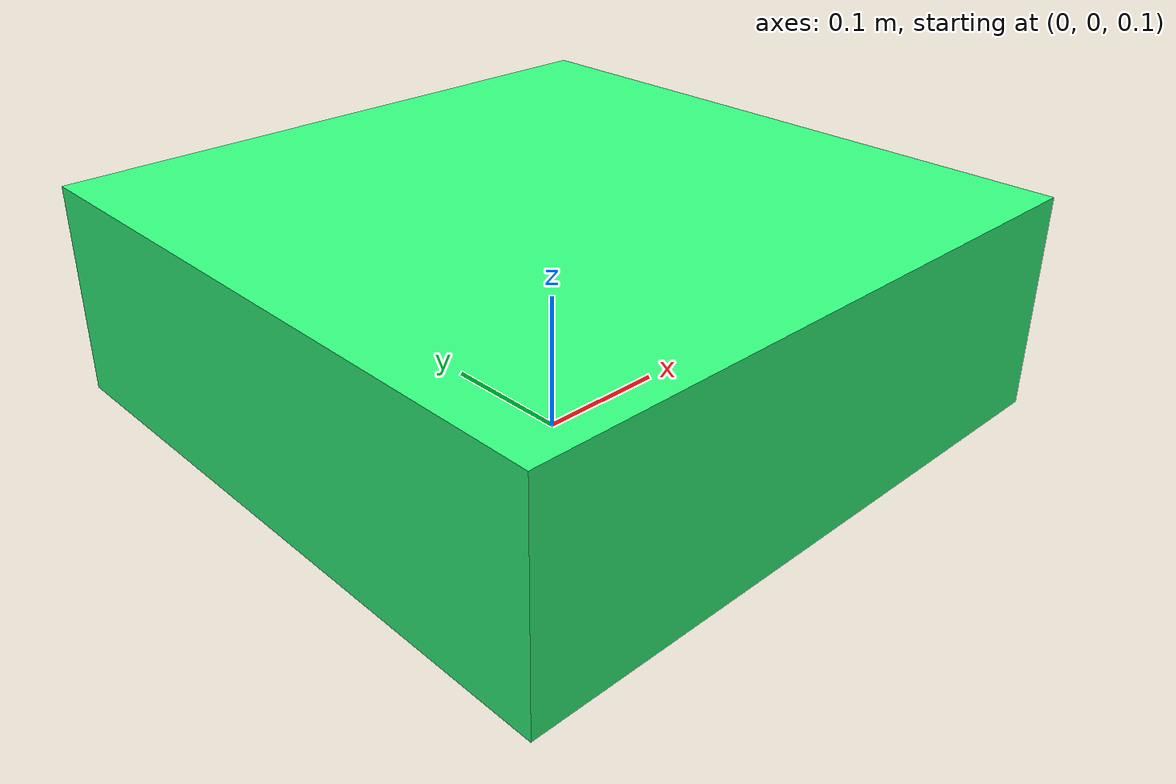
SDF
<?xml version="1.0" ?>
<sdf version="1.8">
  <model name="uav_beta_relay">
    <pose>0 0 0.2 0 0 0</pose>
    <static>false</static>
    <self_collide>false</self_collide>

    <!-- Main Chassis Frame -->
    <link name="base_link">
      <pose>0 0 0 0 0 0</pose>
      <inertial>
        <mass>1.45</mass>
        <inertia>
          <ixx>0.02</ixx>
          <ixy>0</ixy>
          <ixz>0</ixz>
          <iyy>0.02</iyy>
          <iyz>0</iyz>
          <izz>0.04</izz>
        </inertia>
      </inertial>
      <collision name="chassis_collision">
        <geometry>
          <box><size>0.45 0.45 0.15</size></box>
        </geometry>
      </collision>
      <visual name="chassis_visual">
        <geometry>
          <box><size>0.45 0.45 0.15</size></box>
        </geometry>
        <material>
          <ambient>0.1 1.0 0.4 1</ambient>
          <diffuse>0.2 1.0 0.5 1</diffuse>
        </material>
      </visual>

      <!-- 1. IMU Sensor -->
      <sensor name="imu_sensor" type="imu">
        <always_on>true</always_on>
        <update_rate>250.0</update_rate>
        <topic>/uav_beta/imu</topic>
      </sensor>

      <!-- 2. Barometer -->
      <sensor name="air_pressure_sensor" type="air_pressure">
        <always_on>true</always_on>
        <update_rate>50.0</update_rate>
        <topic>/uav_beta/air_pressure</topic>
        <air_pressure><reference_altitude>0.0</reference_altitude><pressure><noise type="gaussian"><mean>0.0</mean><stddev>1.2</stddev></noise></pressure></air_pressure>
      </sensor>

      <!-- 3. Magnetometer -->
      <sensor name="magnetometer_sensor" type="magnetometer">
        <always_on>true</always_on>
        <update_rate>50.0</update_rate>
        <topic>/uav_beta/magnetometer</topic>
      </sensor>

      <!-- 4. NavSat GNSS -->
      <sensor name="navsat_sensor" type="navsat">
        <always_on>true</always_on>
        <update_rate>10.0</update_rate>
        <topic>/uav_beta/navsat</topic>
      </sensor>

      <!-- 5. 360° 3D GPU LiDAR -->
      <sensor name="lidar_sensor" type="gpu_lidar">
        <pose>0 0 0.08 0 0 0</pose>
        <always_on>true</always_on>
        <update_rate>10.0</update_rate>
        <topic>/uav_beta/lidar/points</topic>
        <ray>
          <scan>
            <horizontal><samples>720</samples><resolution>1</resolution><min_angle>-3.14159265</min_angle><max_angle>3.14159265</max_angle></horizontal>
            <vertical><samples>32</samples><resolution>1</resolution><min_angle>-0.436332</min_angle><max_angle>0.261799</max_angle></vertical>
          </scan>
          <range><min>0.10</min><max>50.0</max><resolution>0.01</resolution></range>
          <noise><type>gaussian</type><mean>0.0</mean><stddev>0.01</stddev></noise>
        </ray>
      </sensor>

      <!-- 6. Downward Rangefinder -->
      <sensor name="rangefinder_sensor" type="gpu_lidar">
        <pose>0 0 -0.04 0 1.5707963 0</pose>
        <always_on>true</always_on>
        <update_rate>50.0</update_rate>
        <topic>/uav_beta/rangefinder/distance</topic>
        <ray>
          <scan><horizontal><samples>1</samples><min_angle>0</min_angle><max_angle>0</max_angle></horizontal><vertical><samples>1</samples><min_angle>0</min_angle><max_angle>0</max_angle></vertical></scan>
          <range><min>0.05</min><max>40.0</max></range>
        </ray>
      </sensor>

      <!-- 7. Optical RGB Camera -->
      <sensor name="rgb_camera" type="camera">
        <pose>0.2 0 0.05 0 0 0</pose>
        <always_on>true</always_on>
        <update_rate>30.0</update_rate>
        <topic>/uav_beta/rgb_camera/image_raw</topic>
        <camera><horizontal_fov>1.4</horizontal_fov><image><width>1280</width><height>720</height><format>R8G8B8</format></image><clip><near>0.1</near><far>200.0</far></clip></camera>
      </sensor>

      <!-- 8. Thermal Camera -->
      <sensor name="thermal_camera" type="thermal">
        <pose>0.2 0 -0.05 0 0 0</pose>
        <always_on>true</always_on>
        <update_rate>30.0</update_rate>
        <topic>/uav_beta/thermal_camera/image_raw</topic>
      </sensor>
    </link>
  </model>
</sdf>
